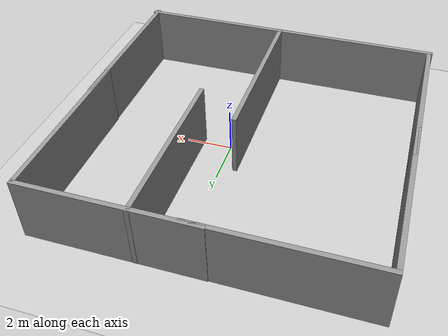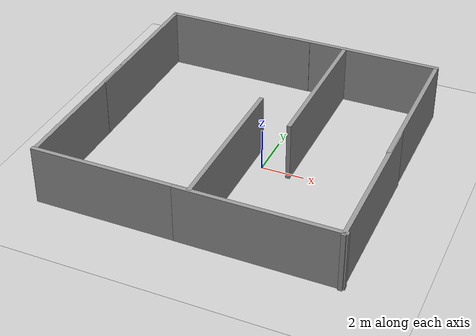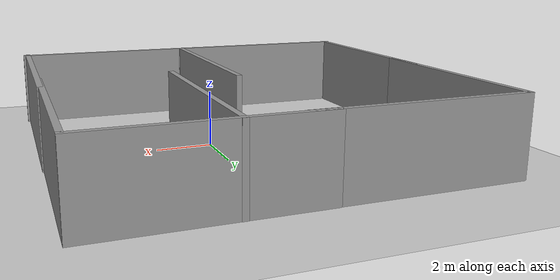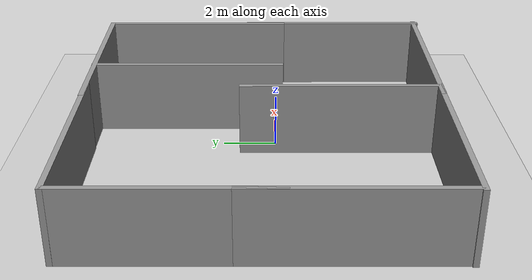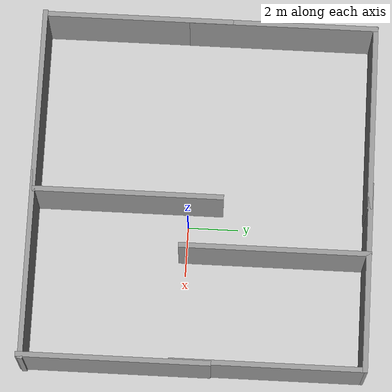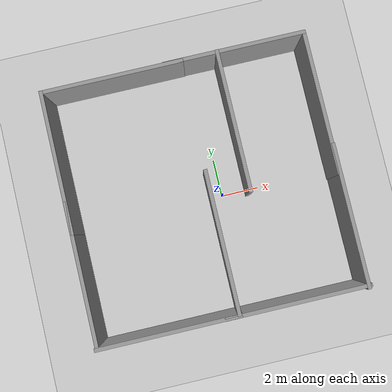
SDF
<sdf version="1.7">
 <world name="default">
  <light name="sun" type="directional">
   <pose>0 0 10 0 -0 0</pose>
   <diffuse>0.8 0.8 0.8 1</diffuse>
   <specular>0.2 0.2 0.2 1</specular>
   <attenuation>
    <range>1000</range>
    <constant>0.9</constant>
    <linear>0.01</linear>
    <quadratic>0.001</quadratic>
   </attenuation>
   <direction>-0.5 0.1 -0.9</direction>
   <spot><inner_angle>0</inner_angle><outer_angle>0</outer_angle><falloff>0</falloff></spot>
  </light>
  <model name="ground_plane">
   <static>1</static>
   <link name="link">
    <collision name="collision">
     <geometry><plane><normal>0 0 1</normal><size>100 100</size></plane></geometry>
     <surface>
      <contact><collide_bitmask>65535</collide_bitmask></contact>
      <friction><ode><mu>100</mu><mu2>50</mu2></ode></friction>
     </surface>
    </collision>
    <visual name="visual">
     <cast_shadows>0</cast_shadows>
     <geometry><plane><normal>0 0 1</normal><size>100 100</size></plane></geometry>
     <material>
      <script><uri>file://media/materials/scripts/gazebo.material</uri><name>Gazebo/Grey</name></script>
     </material>
    </visual>
   </link>
  </model>
  <gravity>0 0 -9.8</gravity>
  <magnetic_field>6e-06 2.3e-05 -4.2e-05</magnetic_field>
  <atmosphere type="adiabatic"/>
  <physics type="ode">
   <max_step_size>0.001</max_step_size>
   <real_time_factor>1</real_time_factor>
   <real_time_update_rate>1000</real_time_update_rate>
  </physics>
  <scene><ambient>0.4 0.4 0.4 1</ambient><background>0.7 0.7 0.7 1</background><shadows>1</shadows></scene>
  <spherical_coordinates>
   <surface_model>EARTH_WGS84</surface_model>
   <latitude_deg>0</latitude_deg>
   <longitude_deg>0</longitude_deg>
   <elevation>0</elevation>
   <heading_deg>0</heading_deg>
  </spherical_coordinates>
  <model name="grey_wall">
   <static>1</static>
   <link name="link">
    <pose>0 0 1.4 0 -0 0</pose>
    <collision name="collision"><geometry><box><size>7.5 0.2 2.8</size></box></geometry></collision>
    <visual name="visual">
     <cast_shadows>0</cast_shadows>
     <geometry><box><size>7.5 0.2 2.8</size></box></geometry>
     <material>
      <script>
       <uri>model://grey_wall/materials/scripts</uri>
       <uri>model://grey_wall/materials/textures</uri>
       <name>vrc/grey_wall</name>
      </script>
     </material>
    </visual>
   </link>
   <pose>2.38745 -6.11216 0 0 -0 0</pose>
  </model>
  <model name="grey_wall_clone">
   <static>1</static>
   <link name="link">
    <pose>0 0 1.4 0 -0 0</pose>
    <collision name="collision"><geometry><box><size>7.5 0.2 2.8</size></box></geometry></collision>
    <visual name="visual">
     <cast_shadows>0</cast_shadows>
     <geometry><box><size>7.5 0.2 2.8</size></box></geometry>
     <material>
      <script>
       <uri>model://grey_wall/materials/scripts</uri>
       <uri>model://grey_wall/materials/textures</uri>
       <name>vrc/grey_wall</name>
      </script>
     </material>
    </visual>
   </link>
   <pose>-4.22663 -6.10397 0 0 -0 0</pose>
  </model>
  <model name="grey_wall_clone_0">
   <static>1</static>
   <link name="link">
    <pose>0 0 1.4 0 -0 0</pose>
    <collision name="collision"><geometry><box><size>7.5 0.2 2.8</size></box></geometry></collision>
    <visual name="visual">
     <cast_shadows>0</cast_shadows>
     <geometry><box><size>7.5 0.2 2.8</size></box></geometry>
     <material>
      <script>
       <uri>model://grey_wall/materials/scripts</uri>
       <uri>model://grey_wall/materials/textures</uri>
       <name>vrc/grey_wall</name>
      </script>
     </material>
    </visual>
   </link>
   <pose>-4.19356 7.06729 0 0 -0 0</pose>
  </model>
  <model name="grey_wall_clone_1">
   <static>1</static>
   <link name="link">
    <pose>0 0 1.4 0 -0 0</pose>
    <collision name="collision"><geometry><box><size>7.5 0.2 2.8</size></box></geometry></collision>
    <visual name="visual">
     <cast_shadows>0</cast_shadows>
     <geometry><box><size>7.5 0.2 2.8</size></box></geometry>
     <material>
      <script>
       <uri>model://grey_wall/materials/scripts</uri>
       <uri>model://grey_wall/materials/textures</uri>
       <name>vrc/grey_wall</name>
      </script>
     </material>
    </visual>
   </link>
   <pose>2.24067 7.09206 0 0 -0 0</pose>
  </model>
  <model name="grey_wall_clone_2">
   <static>1</static>
   <link name="link">
    <pose>0 0 1.4 0 -0 0</pose>
    <collision name="collision"><geometry><box><size>7.5 0.2 2.8</size></box></geometry></collision>
    <visual name="visual">
     <cast_shadows>0</cast_shadows>
     <geometry><box><size>7.5 0.2 2.8</size></box></geometry>
     <material>
      <script>
       <uri>model://grey_wall/materials/scripts</uri>
       <uri>model://grey_wall/materials/textures</uri>
       <name>vrc/grey_wall</name>
      </script>
     </material>
    </visual>
   </link>
   <pose>-7.83487 3.4122 0 0 0 -1.56887</pose>
  </model>
  <model name="grey_wall_clone_2_clone">
   <static>1</static>
   <link name="link">
    <pose>0 0 1.4 0 -0 0</pose>
    <collision name="collision"><geometry><box><size>7.5 0.2 2.8</size></box></geometry></collision>
    <visual name="visual">
     <cast_shadows>0</cast_shadows>
     <geometry><box><size>7.5 0.2 2.8</size></box></geometry>
     <material>
      <script>
       <uri>model://grey_wall/materials/scripts</uri>
       <uri>model://grey_wall/materials/textures</uri>
       <name>vrc/grey_wall</name>
      </script>
     </material>
    </visual>
   </link>
   <pose>-7.8277 -2.35437 0 0 0 -1.56887</pose>
  </model>
  <model name="grey_wall_clone_2_clone_0">
   <static>1</static>
   <link name="link">
    <pose>0 0 1.4 0 -0 0</pose>
    <collision name="collision"><geometry><box><size>7.5 0.2 2.8</size></box></geometry></collision>
    <visual name="visual">
     <cast_shadows>0</cast_shadows>
     <geometry><box><size>7.5 0.2 2.8</size></box></geometry>
     <material>
      <script>
       <uri>model://grey_wall/materials/scripts</uri>
       <uri>model://grey_wall/materials/textures</uri>
       <name>vrc/grey_wall</name>
      </script>
     </material>
    </visual>
   </link>
   <pose>5.90056 3.32102 0 0 0 -1.56887</pose>
  </model>
  <model name="grey_wall_clone_2_clone_1">
   <static>1</static>
   <link name="link">
    <pose>0 0 1.4 0 -0 0</pose>
    <collision name="collision"><geometry><box><size>7.5 0.2 2.8</size></box></geometry></collision>
    <visual name="visual">
     <cast_shadows>0</cast_shadows>
     <geometry><box><size>7.5 0.2 2.8</size></box></geometry>
     <material>
      <script>
       <uri>model://grey_wall/materials/scripts</uri>
       <uri>model://grey_wall/materials/textures</uri>
       <name>vrc/grey_wall</name>
      </script>
     </material>
    </visual>
   </link>
   <pose>5.95351 -2.54832 0 0 0 -1.56887</pose>
  </model>
  <model name="grey_wall_clone_2_clone_2">
   <static>1</static>
   <link name="link">
    <pose>0 0 1.4 0 -0 0</pose>
    <collision name="collision"><geometry><box><size>7.5 0.2 2.8</size></box></geometry></collision>
    <visual name="visual">
     <cast_shadows>0</cast_shadows>
     <geometry><box><size>7.5 0.2 2.8</size></box></geometry>
     <material>
      <script>
       <uri>model://grey_wall/materials/scripts</uri>
       <uri>model://grey_wall/materials/textures</uri>
       <name>vrc/grey_wall</name>
      </script>
     </material>
    </visual>
   </link>
   <pose>-0.617452 -2.37787 0 0 0 -1.56887</pose>
  </model>
  <model name="grey_wall_clone_2_clone_3">
   <static>1</static>
   <link name="link">
    <pose>0 0 1.4 0 -0 0</pose>
    <collision name="collision"><geometry><box><size>7.5 0.2 2.8</size></box></geometry></collision>
    <visual name="visual">
     <cast_shadows>0</cast_shadows>
     <geometry><box><size>7.5 0.2 2.8</size></box></geometry>
     <material>
      <script>
       <uri>model://grey_wall/materials/scripts</uri>
       <uri>model://grey_wall/materials/textures</uri>
       <name>vrc/grey_wall</name>
      </script>
     </material>
    </visual>
   </link>
   <pose>1.35162 3.45263 0 0 0 -1.56887</pose>
  </model>
 </world>
</sdf>
